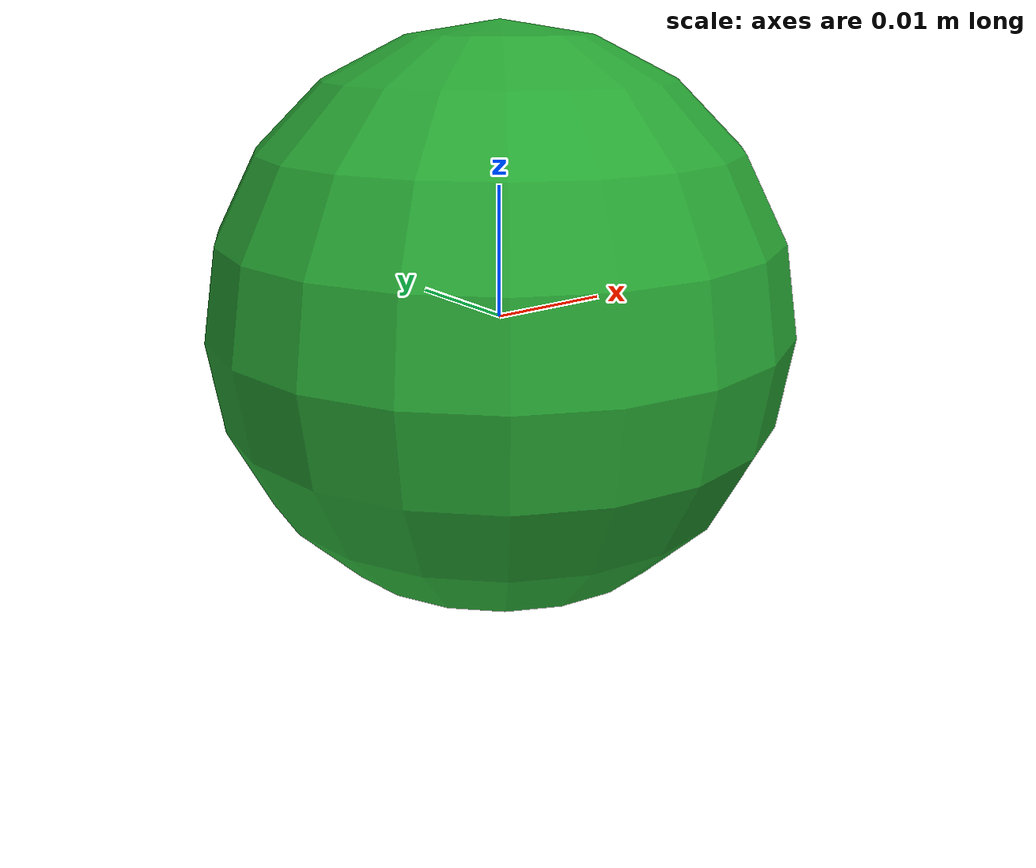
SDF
<?xml version='1.0'?>
<sdf version='1.7'>
  <model name='pelota_verde'>
    <link name='link'>
      <inertial>
        <mass>1</mass>
        <pose>0 0 0 0 0 0</pose>
      </inertial>
      <pose>0 0 0 0 0 0</pose>
      <self_collide>0</self_collide>
      <kinematic>0</kinematic>
      <enable_wind>0</enable_wind>
      <visual name='visual'>
        <pose>0 0 0 0 0 0</pose>
        <geometry>
          <sphere>
            <radius>0.022</radius>
          </sphere>
        </geometry>
        <material>
          <lighting>1</lighting>
          <script>
            <uri>file://media/materials/scripts/gazebo.material</uri>
            <name>Gazebo/GreenGlow</name>
          </script>
          <shader type='pixel'>
            <normal_map>__default__</normal_map>
          </shader>
        </material>
        <transparency>0</transparency>
        <cast_shadows>1</cast_shadows>
      </visual>
      <collision name='collision'>
        <geometry>
          <sphere>
            <radius>0.000</radius>
          </sphere>
        </geometry>
      </collision>
    </link>
    <static>1</static>
    <allow_auto_disable>1</allow_auto_disable>
  </model>
</sdf>
